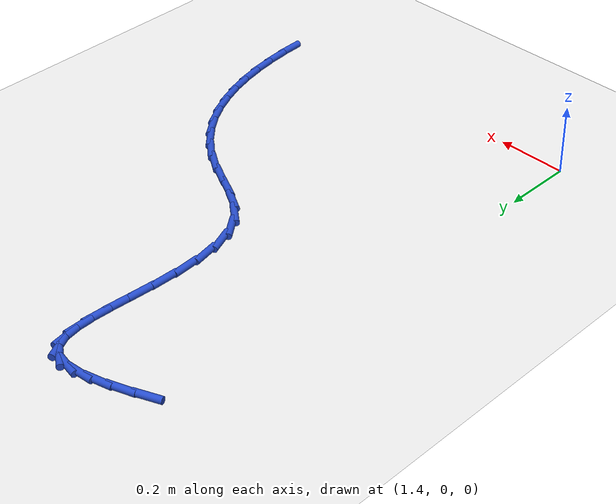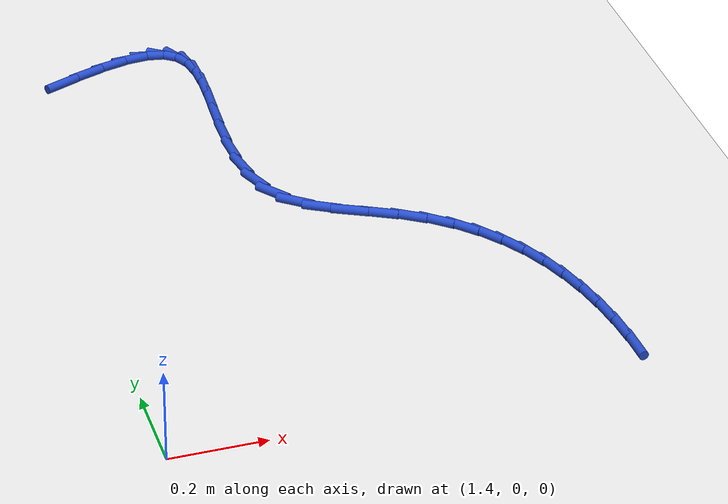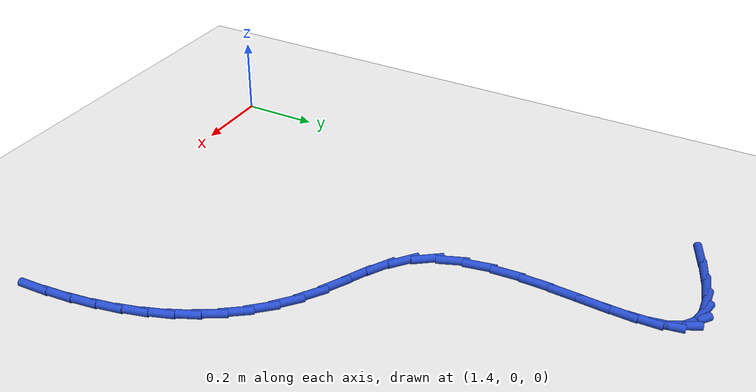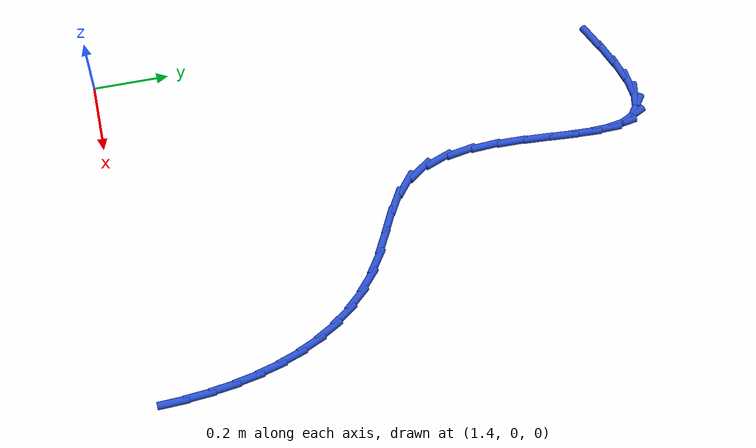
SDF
<sdf version="1.6">
 <world name="default">
  <model name="ground_plane">
   <static>1</static>
   <link name="link">
    <collision name="collision">
     <geometry><plane><normal>0 0 1</normal><size>100 100</size></plane></geometry>
     <surface><friction><ode><mu>100</mu><mu2>50</mu2></ode></friction></surface>
    </collision>
    <visual name="visual">
     <cast_shadows>0</cast_shadows>
     <geometry><plane><normal>0 0 1</normal><size>100 100</size></plane></geometry>
     <material>
      <script><uri>file://media/materials/scripts/gazebo.material</uri><name>Gazebo/WhiteGlow</name></script>
     </material>
    </visual>
   </link>
  </model>
  <model name="line">
   <link name="link_35">
    <pose>1.517404721054407 1.3525575028311938 0.01 0 1.57 0.38862904998046327</pose>
    <collision name="collision">
     <geometry><cylinder><radius>0.01</radius><length>0.08</length></cylinder></geometry>
    </collision>
    <visual name="visual">
     <material>
      <script><name>Gazebo/Blue</name><uri>file://media/materials/scripts/gazebo.material</uri></script>
     </material>
     <geometry><cylinder><radius>0.01</radius><length>0.08</length></cylinder></geometry>
    </visual>
   </link>
   <link name="link_36">
    <pose>1.5785750119324264 1.3776038755587494 0.01 0 1.57 0.3351674174039165</pose>
    <collision name="collision">
     <geometry><cylinder><radius>0.01</radius><length>0.08</length></cylinder></geometry>
    </collision>
    <visual name="visual">
     <material>
      <script><name>Gazebo/Blue</name><uri>file://media/materials/scripts/gazebo.material</uri></script>
     </material>
     <geometry><cylinder><radius>0.01</radius><length>0.08</length></cylinder></geometry>
    </visual>
   </link>
   <link name="link_37">
    <pose>1.6347174208444832 1.3971587724459218 0.01 0 1.57 0.24312652350404246</pose>
    <collision name="collision">
     <geometry><cylinder><radius>0.01</radius><length>0.08</length></cylinder></geometry>
    </collision>
    <visual name="visual">
     <material>
      <script><name>Gazebo/Blue</name><uri>file://media/materials/scripts/gazebo.material</uri></script>
     </material>
     <geometry><cylinder><radius>0.01</radius><length>0.08</length></cylinder></geometry>
    </visual>
   </link>
   <link name="link_38">
    <pose>1.684851769807812 1.4095937459330363 0.01 0 1.57 0.08523757630369626</pose>
    <collision name="collision">
     <geometry><cylinder><radius>0.01</radius><length>0.08</length></cylinder></geometry>
    </collision>
    <visual name="visual">
     <material>
      <script><name>Gazebo/Blue</name><uri>file://media/materials/scripts/gazebo.material</uri></script>
     </material>
     <geometry><cylinder><radius>0.01</radius><length>0.08</length></cylinder></geometry>
    </visual>
   </link>
   <link name="link_39">
    <pose>1.7279978808396437 1.4132803484604168 0.01 0 1.57 -0.1879390144340826</pose>
    <collision name="collision">
     <geometry><cylinder><radius>0.01</radius><length>0.08</length></cylinder></geometry>
    </collision>
    <visual name="visual">
     <material>
      <script><name>Gazebo/Blue</name><uri>file://media/materials/scripts/gazebo.material</uri></script>
     </material>
     <geometry><cylinder><radius>0.01</radius><length>0.08</length></cylinder></geometry>
    </visual>
   </link>
   <link name="link_40">
    <pose>1.7631755759572112 1.4065901324683892 0.01 0 1.57 -0.6192493041097279</pose>
    <collision name="collision">
     <geometry><cylinder><radius>0.01</radius><length>0.08</length></cylinder></geometry>
    </collision>
    <visual name="visual">
     <material>
      <script><name>Gazebo/Blue</name><uri>file://media/materials/scripts/gazebo.material</uri></script>
     </material>
     <geometry><cylinder><radius>0.01</radius><length>0.08</length></cylinder></geometry>
    </visual>
   </link>
   <link name="link_41">
    <pose>1.7894046771777492 1.3878946503972778 0.01 0 1.57 -1.0986683523802858</pose>
    <collision name="collision">
     <geometry><cylinder><radius>0.01</radius><length>0.08</length></cylinder></geometry>
    </collision>
    <visual name="visual">
     <material>
      <script><name>Gazebo/Blue</name><uri>file://media/materials/scripts/gazebo.material</uri></script>
     </material>
     <geometry><cylinder><radius>0.01</radius><length>0.08</length></cylinder></geometry>
    </visual>
   </link>
   <link name="link_42">
    <pose>1.805832579866087 1.3557238169060868 0.01 0 1.57 -1.4029214719768888</pose>
    <collision name="collision">
     <geometry><cylinder><radius>0.01</radius><length>0.08</length></cylinder></geometry>
    </collision>
    <visual name="visual">
     <material>
      <script><name>Gazebo/Blue</name><uri>file://media/materials/scripts/gazebo.material</uri></script>
     </material>
     <geometry><cylinder><radius>0.01</radius><length>0.08</length></cylinder></geometry>
    </visual>
   </link>
   <link name="link_43">
    <pose>1.8134331354126534 1.3108748041490412 0.01 0 1.57 -1.5505926276156412</pose>
    <collision name="collision">
     <geometry><cylinder><radius>0.01</radius><length>0.08</length></cylinder></geometry>
    </collision>
    <visual name="visual">
     <material>
      <script><name>Gazebo/Blue</name><uri>file://media/materials/scripts/gazebo.material</uri></script>
     </material>
     <geometry><cylinder><radius>0.01</radius><length>0.08</length></cylinder></geometry>
    </visual>
   </link>
   <link name="link_44">
    <pose>1.8145452088381482 1.2558392337173891 0.01 0 1.57 1.5229029948588246</pose>
    <collision name="collision">
     <geometry><cylinder><radius>0.01</radius><length>0.08</length></cylinder></geometry>
    </collision>
    <visual name="visual">
     <material>
      <script><name>Gazebo/Blue</name><uri>file://media/materials/scripts/gazebo.material</uri></script>
     </material>
     <geometry><cylinder><radius>0.01</radius><length>0.08</length></cylinder></geometry>
    </visual>
   </link>
   <link name="link_45">
    <pose>1.8115404896165366 1.1931494735913646 0.01 0 1.57 1.5008661295909544</pose>
    <collision name="collision">
     <geometry><cylinder><radius>0.01</radius><length>0.08</length></cylinder></geometry>
    </collision>
    <visual name="visual">
     <material>
      <script><name>Gazebo/Blue</name><uri>file://media/materials/scripts/gazebo.material</uri></script>
     </material>
     <geometry><cylinder><radius>0.01</radius><length>0.08</length></cylinder></geometry>
    </visual>
   </link>
   <link name="link_46">
    <pose>1.8067906672217813 1.125337891751201 0.01 0 1.57 1.5122953226015656</pose>
    <collision name="collision">
     <geometry><cylinder><radius>0.01</radius><length>0.08</length></cylinder></geometry>
    </collision>
    <visual name="visual">
     <material>
      <script><name>Gazebo/Blue</name><uri>file://media/materials/scripts/gazebo.material</uri></script>
     </material>
     <geometry><cylinder><radius>0.01</radius><length>0.08</length></cylinder></geometry>
    </visual>
   </link>
   <link name="link_47">
    <pose>1.802667431127846 1.0549368561771335 0.01 0 1.57 1.5548313149680053</pose>
    <collision name="collision">
     <geometry><cylinder><radius>0.01</radius><length>0.08</length></cylinder></geometry>
    </collision>
    <visual name="visual">
     <material>
      <script><name>Gazebo/Blue</name><uri>file://media/materials/scripts/gazebo.material</uri></script>
     </material>
     <geometry><cylinder><radius>0.01</radius><length>0.08</length></cylinder></geometry>
    </visual>
   </link>
   <link name="link_48">
    <pose>1.8015424708086945 0.9844787348493961 0.01 0 1.57 -1.5084349910911155</pose>
    <collision name="collision">
     <geometry><cylinder><radius>0.01</radius><length>0.08</length></cylinder></geometry>
    </collision>
    <visual name="visual">
     <material>
      <script><name>Gazebo/Blue</name><uri>file://media/materials/scripts/gazebo.material</uri></script>
     </material>
     <geometry><cylinder><radius>0.01</radius><length>0.08</length></cylinder></geometry>
    </visual>
   </link>
   <link name="link_49">
    <pose>1.8057874757382901 0.9164958957482231 0.01 0 1.57 -1.382706826377724</pose>
    <collision name="collision">
     <geometry><cylinder><radius>0.01</radius><length>0.08</length></cylinder></geometry>
    </collision>
    <visual name="visual">
     <material>
      <script><name>Gazebo/Blue</name><uri>file://media/materials/scripts/gazebo.material</uri></script>
     </material>
     <geometry><cylinder><radius>0.01</radius><length>0.08</length></cylinder></geometry>
    </visual>
   </link>
   <link name="link_50">
    <pose>1.8177741353905972 0.8535207068538481 0.01 0 1.57 -1.1914422515525311</pose>
    <collision name="collision">
     <geometry><cylinder><radius>0.01</radius><length>0.08</length></cylinder></geometry>
    </collision>
    <visual name="visual">
     <material>
      <script><name>Gazebo/Blue</name><uri>file://media/materials/scripts/gazebo.material</uri></script>
     </material>
     <geometry><cylinder><radius>0.01</radius><length>0.08</length></cylinder></geometry>
    </visual>
   </link>
   <link name="link_51">
    <pose>1.8398741392395785 0.7980855361465057 0.01 0 1.57 -0.9227112872778985</pose>
    <collision name="collision">
     <geometry><cylinder><radius>0.01</radius><length>0.08</length></cylinder></geometry>
    </collision>
    <visual name="visual">
     <material>
      <script><name>Gazebo/Blue</name><uri>file://media/materials/scripts/gazebo.material</uri></script>
     </material>
     <geometry><cylinder><radius>0.01</radius><length>0.08</length></cylinder></geometry>
    </visual>
   </link>
   <link name="link_52">
    <pose>1.8743188944842688 0.7525951244398736 0.01 0 1.57 -0.6667047551651732</pose>
    <collision name="collision">
     <geometry><cylinder><radius>0.01</radius><length>0.08</length></cylinder></geometry>
    </collision>
    <visual name="visual">
     <material>
      <script><name>Gazebo/Blue</name><uri>file://media/materials/scripts/gazebo.material</uri></script>
     </material>
     <geometry><cylinder><radius>0.01</radius><length>0.08</length></cylinder></geometry>
    </visual>
   </link>
   <link name="link_53">
    <pose>1.9201371845240813 0.7165405030194659 0.01 0 1.57 -0.5152419192265688</pose>
    <collision name="collision">
     <geometry><cylinder><radius>0.01</radius><length>0.08</length></cylinder></geometry>
    </collision>
    <visual name="visual">
     <material>
      <script><name>Gazebo/Blue</name><uri>file://media/materials/scripts/gazebo.material</uri></script>
     </material>
     <geometry><cylinder><radius>0.01</radius><length>0.08</length></cylinder></geometry>
    </visual>
   </link>
   <link name="link_54">
    <pose>1.9731683733926109 0.6865110068814648 0.01 0 1.57 -0.45744186529572206</pose>
    <collision name="collision">
     <geometry><cylinder><radius>0.01</radius><length>0.08</length></cylinder></geometry>
    </collision>
    <visual name="visual">
     <material>
      <script><name>Gazebo/Blue</name><uri>file://media/materials/scripts/gazebo.material</uri></script>
     </material>
     <geometry><cylinder><radius>0.01</radius><length>0.08</length></cylinder></geometry>
    </visual>
   </link>
   <link name="link_55">
    <pose>2.0291141837494187 0.6589707465161203 0.01 0 1.57 -0.4826101931596079</pose>
    <collision name="collision">
     <geometry><cylinder><radius>0.01</radius><length>0.08</length></cylinder></geometry>
    </collision>
    <visual name="visual">
     <material>
      <script><name>Gazebo/Blue</name><uri>file://media/materials/scripts/gazebo.material</uri></script>
     </material>
     <geometry><cylinder><radius>0.01</radius><length>0.08</length></cylinder></geometry>
    </visual>
   </link>
   <link name="link_56">
    <pose>2.083676338254064 0.6303838324136818 0.01 0 1.57 -0.5822389961350326</pose>
    <collision name="collision">
     <geometry><cylinder><radius>0.01</radius><length>0.08</length></cylinder></geometry>
    </collision>
    <visual name="visual">
     <material>
      <script><name>Gazebo/Blue</name><uri>file://media/materials/scripts/gazebo.material</uri></script>
     </material>
     <geometry><cylinder><radius>0.01</radius><length>0.08</length></cylinder></geometry>
    </visual>
   </link>
   <link name="link_57">
    <pose>2.133218194900381 0.5977668001904205 0.01 0 1.57 -0.7014013801847735</pose>
    <collision name="collision">
     <geometry><cylinder><radius>0.01</radius><length>0.08</length></cylinder></geometry>
    </collision>
    <visual name="visual">
     <material>
      <script><name>Gazebo/Blue</name><uri>file://media/materials/scripts/gazebo.material</uri></script>
     </material>
     <geometry><cylinder><radius>0.01</radius><length>0.08</length></cylinder></geometry>
    </visual>
   </link>
   <link name="link_58">
    <pose>2.1771369214742626 0.5606692314924799 0.01 0 1.57 -0.8197069931632228</pose>
    <collision name="collision">
     <geometry><cylinder><radius>0.01</radius><length>0.08</length></cylinder></geometry>
    </collision>
    <visual name="visual">
     <material>
      <script><name>Gazebo/Blue</name><uri>file://media/materials/scripts/gazebo.material</uri></script>
     </material>
     <geometry><cylinder><radius>0.01</radius><length>0.08</length></cylinder></geometry>
    </visual>
   </link>
   <link name="link_59">
    <pose>2.215698716390655 0.5193662955063059 0.01 0 1.57 -0.9337451665272799</pose>
    <collision name="collision">
     <geometry><cylinder><radius>0.01</radius><length>0.08</length></cylinder></geometry>
    </collision>
    <visual name="visual">
     <material>
      <script><name>Gazebo/Blue</name><uri>file://media/materials/scripts/gazebo.material</uri></script>
     </material>
     <geometry><cylinder><radius>0.01</radius><length>0.08</length></cylinder></geometry>
    </visual>
   </link>
   <link name="link_60">
    <pose>2.2491698495714405 0.47413322112227113 0.01 0 1.57 -1.0407591744134792</pose>
    <collision name="collision">
     <geometry><cylinder><radius>0.01</radius><length>0.08</length></cylinder></geometry>
    </collision>
    <visual name="visual">
     <material>
      <script><name>Gazebo/Blue</name><uri>file://media/materials/scripts/gazebo.material</uri></script>
     </material>
     <geometry><cylinder><radius>0.01</radius><length>0.08</length></cylinder></geometry>
    </visual>
   </link>
   <link name="link_61">
    <pose>2.277816590938499 0.4252452372307461 0.01 0 1.57 -1.1389394342008434</pose>
    <collision name="collision">
     <geometry><cylinder><radius>0.01</radius><length>0.08</length></cylinder></geometry>
    </collision>
    <visual name="visual">
     <material>
      <script><name>Gazebo/Blue</name><uri>file://media/materials/scripts/gazebo.material</uri></script>
     </material>
     <geometry><cylinder><radius>0.01</radius><length>0.08</length></cylinder></geometry>
    </visual>
   </link>
   <link name="link_62">
    <pose>2.3019052104137137 0.37297757272210225 0.01 0 1.57 -1.2274358889085113</pose>
    <collision name="collision">
     <geometry><cylinder><radius>0.01</radius><length>0.08</length></cylinder></geometry>
    </collision>
    <visual name="visual">
     <material>
      <script><name>Gazebo/Blue</name><uri>file://media/materials/scripts/gazebo.material</uri></script>
     </material>
     <geometry><cylinder><radius>0.01</radius><length>0.08</length></cylinder></geometry>
    </visual>
   </link>
   <link name="link_63">
    <pose>2.3217019779189627 0.31760545648671107 0.01 0 1.57 -1.3061747213882013</pose>
    <collision name="collision">
     <geometry><cylinder><radius>0.01</radius><length>0.08</length></cylinder></geometry>
    </collision>
    <visual name="visual">
     <material>
      <script><name>Gazebo/Blue</name><uri>file://media/materials/scripts/gazebo.material</uri></script>
     </material>
     <geometry><cylinder><radius>0.01</radius><length>0.08</length></cylinder></geometry>
    </visual>
   </link>
   <link name="link_64">
    <pose>2.337473163376129 0.2594041174149446 0.01 0 1.57 -1.3756046633866974</pose>
    <collision name="collision">
     <geometry><cylinder><radius>0.01</radius><length>0.08</length></cylinder></geometry>
    </collision>
    <visual name="visual">
     <material>
      <script><name>Gazebo/Blue</name><uri>file://media/materials/scripts/gazebo.material</uri></script>
     </material>
     <geometry><cylinder><radius>0.01</radius><length>0.08</length></cylinder></geometry>
    </visual>
   </link>
   <link name="link_65">
    <pose>2.3494850367070925 0.19864878439717387 0.01 0 1.57 -1.4364638267731042</pose>
    <collision name="collision">
     <geometry><cylinder><radius>0.01</radius><length>0.08</length></cylinder></geometry>
    </collision>
    <visual name="visual">
     <material>
      <script><name>Gazebo/Blue</name><uri>file://media/materials/scripts/gazebo.material</uri></script>
     </material>
     <geometry><cylinder><radius>0.01</radius><length>0.08</length></cylinder></geometry>
    </visual>
   </link>
   <link name="link_66">
    <pose>2.358003867833734 0.1356146863237704 0.01 0 1.57 -1.4896060188814197</pose>
    <collision name="collision">
     <geometry><cylinder><radius>0.01</radius><length>0.08</length></cylinder></geometry>
    </collision>
    <visual name="visual">
     <material>
      <script><name>Gazebo/Blue</name><uri>file://media/materials/scripts/gazebo.material</uri></script>
     </material>
     <geometry><cylinder><radius>0.01</radius><length>0.08</length></cylinder></geometry>
    </visual>
   </link>
   <link name="link_67">
    <pose>2.363295926677936 0.07057705208510459 0.01 0 1.57 -1.5358891668610102</pose>
    <collision name="collision">
     <geometry><cylinder><radius>0.01</radius><length>0.08</length></cylinder></geometry>
    </collision>
    <visual name="visual">
     <material>
      <script><name>Gazebo/Blue</name><uri>file://media/materials/scripts/gazebo.material</uri></script>
     </material>
     <geometry><cylinder><radius>0.01</radius><length>0.08</length></cylinder></geometry>
    </visual>
   </link>
  </model>
 </world>
</sdf>
